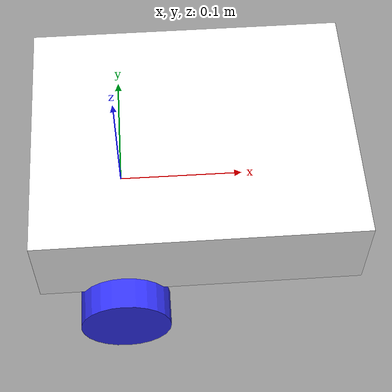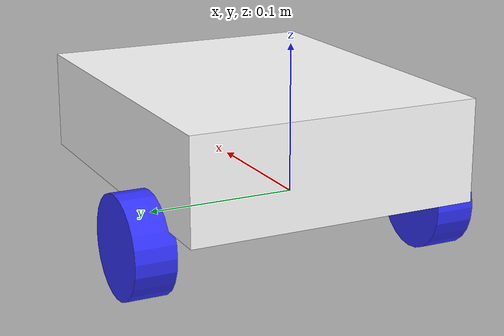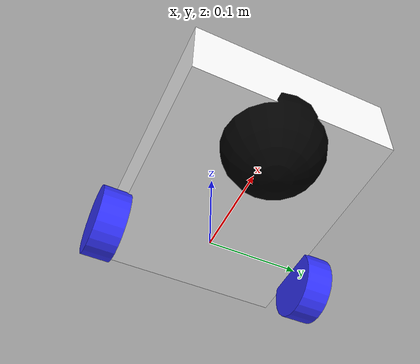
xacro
<?xml version="1.0"?>
<robot xmlns:xacro="http://www.ros.org/wiki/xacro"  name="robot">
  <xacro:arg name="use_ros2_control" default="true"/>
  <xacro:arg name="sim_mode" default="false"/>

  <xacro:include filename="robot_core.xacro"/>

  <xacro:if value="$(arg use_ros2_control)">
    <xacro:include filename="ros2_control.xacro" />
  </xacro:if>
  <xacro:unless value="$(arg use_ros2_control)">
      <xacro:include filename="gazebo_control.xacro" />
  </xacro:unless>
<parameters>$(find lawnbot_proto)/config/my_controllers.yaml</parameters>
</robot>

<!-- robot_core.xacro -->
<robot xmlns:xacro="http://www.ros.org/wiki/xacro">

  <xacro:include filename="inertial_macros.xacro"/>

  <material name="white">
    <color rgba="1 1 1 1" />
  </material>
  <material name="orange">
    <color rgba="1 0.3 0.1 1" />
  </material>
  <material name="black">
    <color rgba="0 0 0 1" />
  </material>
  <material name="blue">
    <color rgba="0.2 0.2 1 1" />
  </material>

  <link name="base_link">
  </link>

  <joint name="chassis_joint" type="fixed">
    <parent link="base_link"/>
    <child link="chassis"/>
    <origin xyz="-0.1 0 0"/>
  </joint>

  <link name="chassis">
    <visual>
      <origin xyz="0.16 0 0.032"/>
      <geometry>
        <box size="0.25 0.2 0.07"/>
      </geometry>
      <material name="white"/>
    </visual>
    <collision>
      <origin xyz="0.16 0 0.032"/>
      <geometry>
        <box size="0.25 0.2 0.07"/>
      </geometry>
    </collision>
    <xacro:inertial_box mass="0.5" x="0.25" y="0.2" z="0.07">
      <origin xyz="0.16 0 0.032" rpy="0 0 0" />
    </xacro:inertial_box>
  </link>

  <gazebo reference="chassis">
    <material>Gazebo/White</material>
  </gazebo>

  <joint name="left_wheel_joint" type="continuous">
    <parent link="base_link"/>
    <child link="left_wheel"/>
    <origin xyz="0 0.11 -0.02" rpy="-${pi/2} 0 0"/>
    <axis xyz="0 0 1" />
  </joint>

  <link name="left_wheel">
    <visual>
      <geometry>
        <cylinder radius="0.035" length="0.028"/>
      </geometry>
      <material name="blue"/>
    </visual>
    <collision>
      <geometry>
        <sphere radius="0.035"/>
      </geometry>
    </collision>
    <xacro:inertial_cylinder mass="0.1" length="0.028" radius="0.035">
      <origin xyz="0 0 0" rpy="0 0 0" />
    </xacro:inertial_cylinder>
  </link>

  <gazebo reference="left_wheel">
    <material>Gazebo/Blue</material>
  </gazebo>

  <joint name="right_wheel_joint" type="continuous">
    <parent link="base_link"/>
    <child link="right_wheel"/>
    <origin xyz="0 -0.11 -0.02" rpy="${pi/2} 0 0"/>
    <axis xyz="0 0 -1" />
  </joint>

  <link name="right_wheel">
    <visual>
      <geometry>
        <cylinder radius="0.035" length="0.028"/>
      </geometry>
      <material name="blue"/>
    </visual>
    <collision>
      <geometry>
        <sphere radius="0.035"/>
      </geometry>
    </collision>
    <xacro:inertial_cylinder mass="0.1" length="0.028" radius="0.035">
      <origin xyz="0 0 0" rpy="0 0 0" />
    </xacro:inertial_cylinder>
  </link>

  <gazebo reference="right_wheel">
    <material>Gazebo/Blue</material>
  </gazebo>

  <joint name="caster_wheel_joint" type="fixed">
    <parent link="chassis"/>
    <child link="caster_wheel"/>
    <origin xyz="0.24 0 0"/>
  </joint>

  <link name="caster_wheel">
    <visual>
      <geometry>
        <sphere radius="0.05"/>
      </geometry>
      <material name="black"/>
    </visual>
    <collision>
      <geometry>
        <sphere radius="0.05"/>
      </geometry>
    </collision>
    <xacro:inertial_sphere mass="0.1" radius="0.05">
      <origin xyz="0 0 0" rpy="0 0 0" />
    </xacro:inertial_sphere>
  </link>

<gazebo reference="caster_wheel">
    <material>Gazebo/Black</material>
    <mu1 value="0.001"/>
    <mu2 value="0.001"/>
</gazebo>

</robot>
